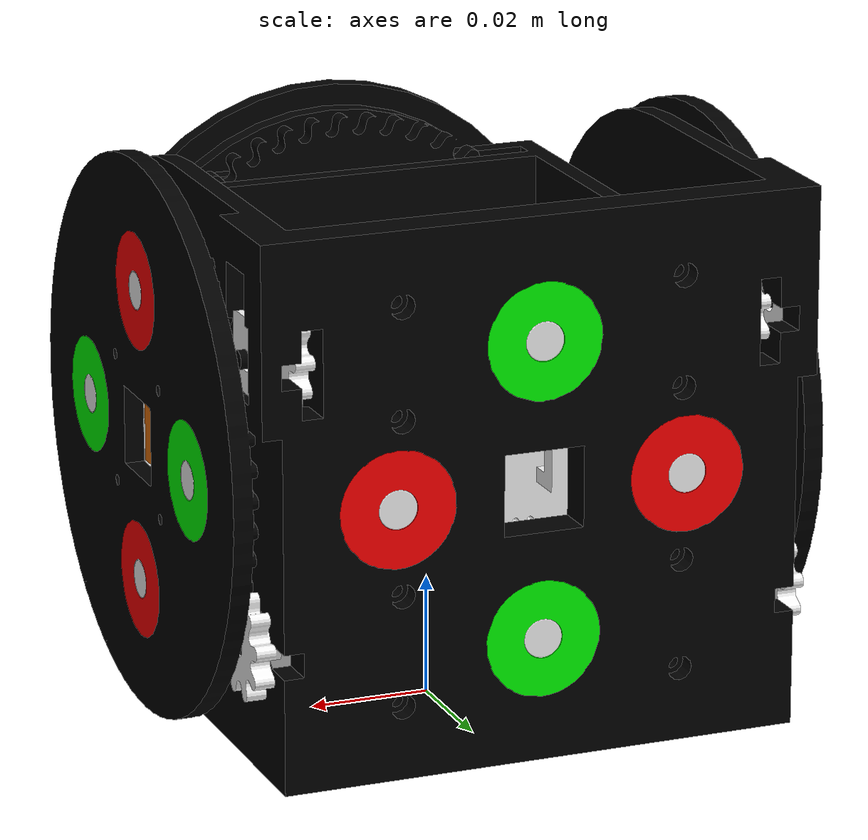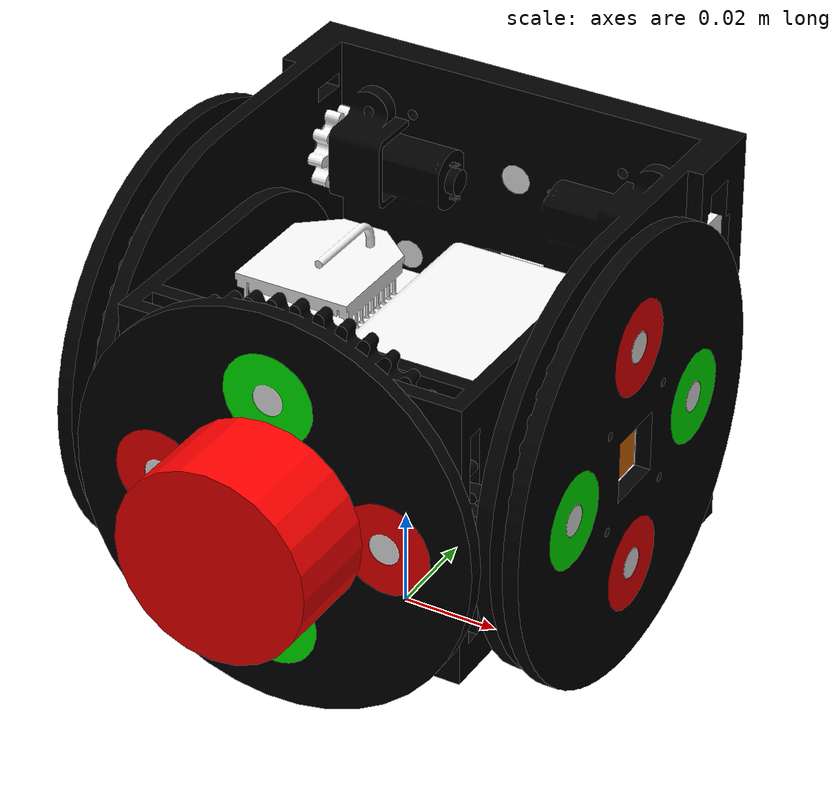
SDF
<?xml version='1.0'?>
<sdf version='1.4'>
  <model name='SMORES6Uriah'>
	<static>false</static>

    <link name='CircuitHolder'>
      <pose>0 0 .05 0 0 0</pose>
      <inertial>
        <pose>0.00799044 -0.00824713 0.00675345 0 -0 0</pose>
        <mass>0.309551</mass>
        <inertia>
          <ixx>0.000152716</ixx>
          <ixy>0</ixy>
          <ixz>0</ixz>
          <iyy>0.000166672</iyy>
          <iyz>0</iyz>
          <izz>0.000206589</izz>
        </inertia>
      </inertial>
      <collision name='CircuitHolder_collision'>
        <pose>0.03605 0.02985 -0.029675 1.5707963 0 -1.5707963</pose>
        <geometry>
          <mesh>
            <scale>1 1 1</scale>
            <uri>model://SMORES2/meshes/CircuitHolderNew.STL</uri>
          </mesh>
        </geometry>
      </collision>
      <visual name='CircuitHolder_visual'>
        <pose>0 0 0 0 0 0</pose>
        <geometry>
          <mesh>
            <scale>1 1 1</scale>
            <uri>model://SMORES2/meshes/CircuitHolder.STL</uri>
          </mesh>
        </geometry>
				<material>
					<ambient>0 0 0 1</ambient>
				</material>
      </visual>

      <visual name='CircuitKey_visual'>
        <pose>0 0 0 0 0 0</pose>
        <geometry>
          <mesh>
            <scale>1 1 1</scale>
            <uri>model://SMORES2/meshes/CircuitKey.STL</uri>
          </mesh>
        </geometry>
				<material>
					<ambient>0.9098 0.4431 0.0314 1</ambient>
				</material>
      </visual>

      <visual name='CircuitPart_visual'>
        <pose>0 0 0 0 0 0</pose>
        <geometry>
          <mesh>
            <scale>1 1 1</scale>
            <uri>model://SMORES2/meshes/CircuitPart.STL</uri>
          </mesh>
        </geometry>
				<material>
					<ambient>0.956862745098039 0.956862745098039 0.956862745098039 1</ambient>
				</material>
      </visual>
    </link>

		<link name='UHolderBody'>
      <pose>0 0 .05 0 0 0</pose>
			<inertial>
        <pose>0 0.0306753 0 0 0 0</pose>
        <mass>0.127498</mass>
        <inertia>
          <ixx>0.000145026</ixx>
          <ixy>0</ixy>
          <ixz>0</ixz>
          <iyy>0.000207429</iyy>
          <iyz>0</iyz>
          <izz>0.000191183</izz>
        </inertia>
      </inertial>
      <collision name='UHolderBody_collision'>
        <pose>0.04265 0.04915 -0.04395 1.5707963 0 -1.5707963</pose>
        <geometry>
          <mesh>
            <scale>1 1 1</scale>
            <uri>model://SMORES2/meshes/UHolderNew.STL</uri>
          </mesh>
        </geometry>
        <!-- The surface prperties of the U shape holder-->
        <surface>
          <friction>
            <ode>
              <mu>0.35</mu>
              <mu2>0.35</mu2>
            </ode>
          </friction>
        </surface>
      </collision>
      <visual name='UHolderBody_visual'>
        <pose>0 0 0 0 0 0</pose>
        <geometry>
          <mesh>
            <scale>1 1 1</scale>
            <uri>model://SMORES2/meshes/UHolderBody.STL</uri>
          </mesh>
        </geometry>
				<material>
					<ambient>0 0 0 1</ambient>
				</material>
      </visual>

      <visual name='UMagAndGears_visual'>
        <pose>0 0 0 0 0 0</pose>
        <geometry>
          <mesh>
            <scale>1 1 1</scale>
            <uri>model://SMORES2/meshes/UMagAndGears.STL</uri>
          </mesh>
        </geometry>
				<material>
					<ambient>0.956862745098039 0.956862745098039 0.956862745098039 1</ambient>
				</material>
      </visual>

      <visual name='UGreenPad_visual'>
        <pose>0 0 0 0 0 0</pose>
        <geometry>
          <mesh>
            <scale>1 1 1</scale>
            <uri>model://SMORES2/meshes/UGreenPad.STL</uri>
          </mesh>
        </geometry>
				<material>
					<ambient>0 1 0 1</ambient>
				</material>
      </visual>

      <visual name='URedPad_visual'>
        <pose>0 0 0 0 -0 0</pose>
        <geometry>
          <mesh>
            <scale>1 1 1</scale>
            <uri>model://SMORES2/meshes/URedPad.STL</uri>
          </mesh>
        </geometry>
				<material>
					<ambient>1 0 0 1</ambient>
				</material>
      </visual>

      <sensor name='UHolder_contact' type='contact'>
          <contact>
            <collision>UHolderBody_collision</collision>
          </contact>
          <plugin name="my_plugin" filename="plugins/libcontact.so"/>
      </sensor>

    </link>

		<link name='FrontWheel'>
      <pose>0 0 .05 0 0 0</pose>
			<inertial>
        <pose>0 -0.0436519 0 0 0 0</pose>
        <mass>0.045716</mass>
        <inertia>
          <ixx>1.94691e-05</ixx>
          <ixy>0</ixy>
          <ixz>0</ixz>
          <iyy>3.74262e-05</iyy>
          <iyz>0</iyz>
          <izz>1.94691e-05</izz>
        </inertia>
      </inertial>
      <collision name='FrontWheel_collision'>
        <pose>0.04202 -0.04913 -0.04202 0 0 1.5707963</pose>
        <geometry>
          <mesh>
            <scale>1 1 1</scale>
            <uri>model://SMORES2/meshes/FrontWheelThin.STL</uri>
          </mesh>
        </geometry>
        <!-- Properties of the front wheel-->
        <surface>
          <friction>
            <ode>
              <mu>0.35</mu>
              <mu2>0.35</mu2>
            </ode>
          </friction>
        </surface>
      </collision>
      <visual name='FrontWheel_visual'>
        <pose>0 0 0 0 0 0</pose>
        <geometry>
          <mesh>
            <scale>1 1 1</scale>
            <uri>model://SMORES2/meshes/FrontWheel.STL</uri>
          </mesh>
        </geometry>
				<material>
					<ambient>0 0 0 1</ambient>
				</material>
      </visual>

      <visual name='CenterMag2_visual'>
        <pose>0 0 0 0 -0 0</pose>
        <geometry>
          <mesh>
            <scale>1 1 1</scale>
            <uri>model://SMORES2/meshes/CenterMag2.STL</uri>
          </mesh>
        </geometry>
				<material>
					<ambient>0.956862745098039 0.956862745098039 0.956862745098039 1</ambient>
				</material>
      </visual>

      <visual name='RedPad2_visual'>
        <pose>0 0 0 0 -0 0</pose>
        <geometry>
          <mesh>
            <scale>1 1 1</scale>
            <uri>model://SMORES2/meshes/RedPad2.STL</uri>
          </mesh>
        </geometry>
				<material>
					<ambient>1 0 0 1</ambient>
				</material>
      </visual>

      <visual name='GreenPad2_visual'>
        <pose>0 0 0 0 0 0</pose>
        <geometry>
          <mesh>
            <scale>1 1 1</scale>
            <uri>model://SMORES2/meshes/GreenPad2.STL</uri>
          </mesh>
        </geometry>
				<material>
					<ambient>0 1 0 1</ambient>
				</material>
      </visual>

      <sensor name='front_contact' type='contact'>
          <contact>
            <collision>FrontWheel_collision</collision>
          </contact>
          <plugin name="my_plugin" filename="plugins/libcontact.so"/>
      </sensor>
    </link>

		<link name='LeftWheel'>
      <pose>0 0 .05 0 0 0</pose>
			<inertial>
        <pose>0.0457825 0 0 0 -0 0</pose>
        <mass>0.0372637</mass>
        <inertia>
          <ixx>3.37995e-05</ixx>
          <ixy>0</ixy>
          <ixz>0</ixz>
          <iyy>1.71576e-05</iyy>
          <iyz>0</iyz>
          <izz>1.71576e-05</izz>
        </inertia>
      </inertial>
      <collision name='LeftWheel_collision'>
        <pose>0.04312 -0.045275 -0.045275 0 0 0</pose>
        <geometry>
          <mesh>
            <scale>1 1 1</scale>
            <uri>model://SMORES2/meshes/MainWheelNewThick.STL</uri>
          </mesh>
        </geometry>
        <!-- Surface Property of material -->
        <!-- The friction coefficient is large because of the rubber band around the wheel-->
        <surface>
          <friction>
            <ode>
              <mu>1</mu>
              <mu2>1</mu2>
            </ode>
          </friction>
        </surface>
      </collision>
      <visual name='LeftWheel_visual'>
        <pose>0 0 0 0 0 0</pose>
        <geometry>
          <mesh>
            <scale>1 1 1</scale>
            <uri>model://SMORES2/meshes/MainWheel.STL</uri>
          </mesh>
        </geometry>
				<material>
					<ambient>0 0 0 1</ambient>
				</material>
      </visual>

      <visual name='LeftMagneticBars_visual'>
        <pose>0 0 0 0 -0 0</pose>
        <geometry>
          <mesh>
            <scale>1 1 1</scale>
            <uri>model://SMORES2/meshes/MagneticBars.STL</uri>
          </mesh>
        </geometry>
				<material>
					<ambient>0.956862745098039 0.956862745098039 0.956862745098039 1</ambient>
				</material>
      </visual>

      <visual name='LeftRedPad_visual'>
        <pose>0 0 0 0 0 0</pose>
        <geometry>
          <mesh>
            <scale>1 1 1</scale>
            <uri>model://SMORES2/meshes/RedPad.STL</uri>
          </mesh>
        </geometry>
				<material>
					<ambient>1 0 0 1</ambient>
				</material>
      </visual>

      <visual name='LeftGreenPad_visual'>
        <pose>0 0 0 0 0 0</pose>
        <geometry>
          <mesh>
            <scale>1 1 1</scale>
            <uri>model://SMORES2/meshes/GreenPad.STL</uri>
          </mesh>
        </geometry>
				<material>
					<ambient>0 1 0 1</ambient>
				</material>
      </visual>

      <sensor name='LeftWheel_contact' type='contact'>
          <contact>
            <collision>LeftWheel_collision</collision>
          </contact>
          <plugin name="my_plugin" filename="plugins/libcontact.so"/>
      </sensor>

    </link>

		<link name='RightWheel'>
      <pose>0 0 0.05 0 0 3.141593</pose>
			<inertial>
        <pose>-0.0457825 0 0 0 -0 0</pose>
        <mass>0.0372637</mass>
        <inertia>
          <ixx>3.37995e-05</ixx>
          <ixy>0</ixy>
          <ixz>0</ixz>
          <iyy>1.71576e-05</iyy>
          <iyz>0</iyz>
          <izz>1.71576e-05</izz>
        </inertia>
      </inertial>
      <collision name='RightWheel_collision'>
        <pose>0.04912 0.045275 -0.045275 0 0 3.1415926</pose>
        <geometry>
          <mesh>
            <scale>1 1 1</scale>
            <uri>model://SMORES2/meshes/MainWheelNewThick.STL</uri>
          </mesh>
        </geometry>
        <!-- Surface Property of material -->
        <!-- The friction coefficient is large because of the rubber band around the wheel-->
        <surface>
          <friction>
            <ode>
              <mu>1</mu>
              <mu2>1</mu2>
            </ode>
          </friction>
        </surface>
      </collision>
      <visual name='RightWheel_visual'>
        <pose>0 0 0 0 0 0</pose>
        <geometry>
          <mesh>
            <scale>1 1 1</scale>
            <uri>model://SMORES2/meshes/MainWheel.STL</uri>
          </mesh>
        </geometry>
				<material>
					<ambient>0 0 0 1</ambient>
				</material>
      </visual>

      <visual name='RightMagneticBars_visual'>
        <pose>0 0 0 0 0 0</pose>
        <geometry>
          <mesh>
            <scale>1 1 1</scale>
            <uri>model://SMORES2/meshes/MagneticBars.STL</uri>
          </mesh>
        </geometry>
				<material>
					<ambient>0.956862745098039 0.956862745098039 0.956862745098039 1</ambient>
				</material>
      </visual>

      <visual name='RightRedPad_visual'>
        <pose>0 0 0 0 0 0</pose>
        <geometry>
          <mesh>
            <scale>1 1 1</scale>
            <uri>model://SMORES2/meshes/RedPad.STL</uri>
          </mesh>
        </geometry>
				<material>
					<ambient>1 0 0 1</ambient>
				</material>
      </visual>

      <visual name='RightGreenPad_visual'>
        <pose>0 0 0 0 -0 0</pose>
        <geometry>
          <mesh>
            <scale>1 1 1</scale>
            <uri>model://SMORES2/meshes/GreenPad.STL</uri>
          </mesh>
        </geometry>
				<material>
					<ambient>0 1 0 1</ambient>
				</material>
      </visual>

      <sensor name='RightWheel_contact' type='contact'>
          <contact>
            <collision>RightWheel_collision</collision>
          </contact>
          <plugin name="my_plugin" filename="plugins/libcontact.so"/>
      </sensor>

    </link>

    <!-- Here come the joints -->

    <joint type="revolute" name="Right_wheel_hinge">
      <pose>0.045 0 0 0 0 0</pose>
      <child>RightWheel</child>
      <parent>UHolderBody</parent>
      <axis>
        <xyz>1 0 0</xyz>
      </axis>
      <physics>
        <ode>
          <max_force>1.2</max_force>
        </ode>
      </physics>
    </joint>
    <joint type="revolute" name="Left_wheel_hinge">
      <pose>0.045 0 0 0 0 0</pose>
      <child>LeftWheel</child>
      <parent>UHolderBody</parent>
      <axis>
        <xyz>1 0 0</xyz>
      </axis>
      <physics>
        <ode>
          <max_force>1.2</max_force>
        </ode>
      </physics>
    </joint>
    <joint type="revolute" name="Front_wheel_hinge">
      <pose>0 -0.044 0 0 0 0</pose>
      <child>FrontWheel</child>
      <parent>CircuitHolder</parent>
      <axis>
        <xyz>0 1 0</xyz>
      </axis>
      <physics>
        <ode>
          <max_force>1.4</max_force>
        </ode>
      </physics>
    </joint>
    <joint type="revolute" name="Center_hinge">
      <pose>0 0 0 0 0 0</pose>
      <child>UHolderBody</child>
      <parent>CircuitHolder</parent>
      <axis>
        <xyz>1 0 0</xyz>
        <limit>
          <lower>-1.5707963</lower>
          <upper>1.5707963</upper>
        </limit>
      </axis>
      <physics>
        <ode>
          <max_force>2.3</max_force>
        </ode>
      </physics>
    </joint>

    <!-- LIDAR -->
    <include>
      <uri>model://SMORES_LIDAR</uri>
      <pose> 0.0 -0.06 0.05 -1.57 1.57 0 </pose>
    </include>
    <joint type="revolute" name="LIDAR_hinge">
      <pose>0 0 0 0 0 0</pose>
      <child>SMORES_LIDAR::model</child>
      <parent>FrontWheel</parent>
      <axis>
        <xyz>1 0 0</xyz>
        <limit>
          <lower>0</lower>
          <upper>0</upper>
        </limit>
      </axis>
    </joint>

    <plugin name="ModelController" filename="plugins/libModuleController.so"/>
  </model>
</sdf>

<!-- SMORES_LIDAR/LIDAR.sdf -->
<sdf version='1.4'>
  <model name='SMORES_LIDAR'>
	<static>false</static>

    <link name='model'>
      <pose>0 0 0 0 0 0</pose>
      <inertial>
        <pose>0 0 0 0 0 0</pose>
        <mass>1e-9</mass> <!-- Gazebo doesn't like massless models /-->
        <inertia>
          <ixx>0</ixx>
          <ixy>0</ixy>
          <ixz>0</ixz>
          <iyy>0</iyy>
          <iyz>0</iyz>
          <izz>0</izz>
        </inertia>
      </inertial>
      <visual name='LIDAR_visual'>
        <pose>0 0 0 0 0 0</pose>
        <geometry>
          <cylinder>
            <radius>.02</radius>
            <length>.02</length>
          </cylinder>
        </geometry>
        <material>
          <ambient>1 0 0 1</ambient>
        </material>
      </visual>
      <sensor name="LIDAR_sensor" type="ray">
        <pose> 0 0 0 0 0 0 </pose>
        <ray>
          <scan>
            <horizontal>
              <samples>360</samples>
              <resolution>1</resolution>
              <min_angle>-1.5</min_angle>
              <max_angle>1.5</max_angle>
            </horizontal>
            <vertical>
              <samples>1</samples>
              <resolution>1</resolution>
              <min_angle>0</min_angle>
              <max_angle>0</max_angle>
            </vertical>
          </scan>
          <range>
            <min>.001</min>
            <max>10</max>
            <resolution>.001</resolution>
          </range>
        </ray>
        <always_on>1</always_on>
        <update_rate>20</update_rate>
        <visualize>true</visualize>
      </sensor>
    </link>

  </model>
</sdf>
